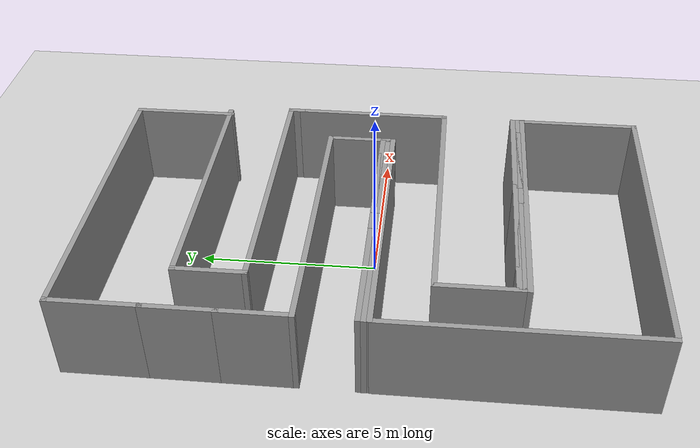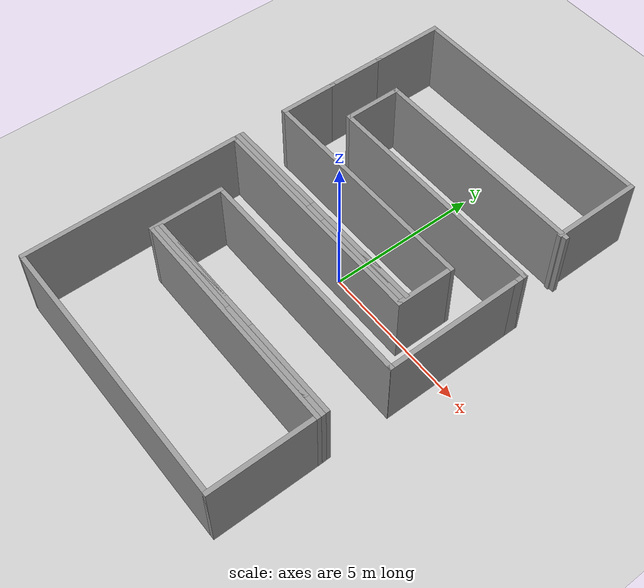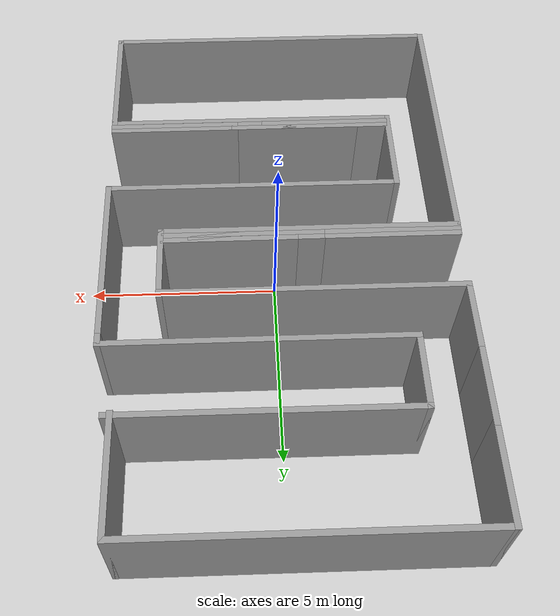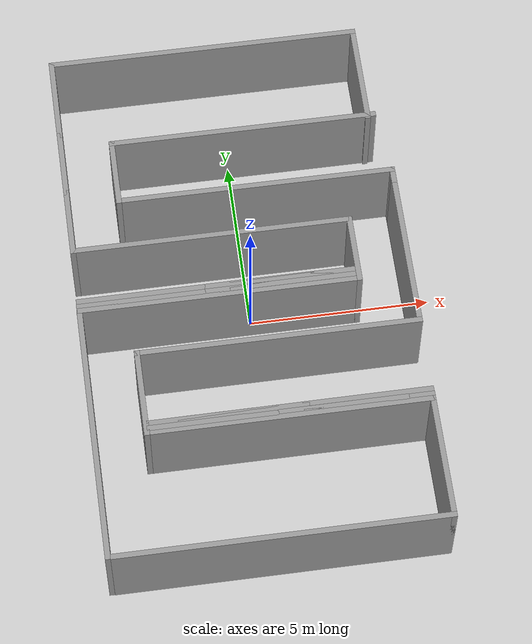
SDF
<sdf version="1.7">
 <world name="default">
  <light name="sun" type="directional">
   <pose>0 0 10 0 -0 0</pose>
   <diffuse>0.8 0.8 0.8 1</diffuse>
   <specular>0.2 0.2 0.2 1</specular>
   <attenuation>
    <range>1000</range>
    <constant>0.9</constant>
    <linear>0.01</linear>
    <quadratic>0.001</quadratic>
   </attenuation>
   <direction>-0.5 0.1 -0.9</direction>
   <spot><inner_angle>0</inner_angle><outer_angle>0</outer_angle><falloff>0</falloff></spot>
  </light>
  <model name="ground_plane">
   <static>1</static>
   <link name="link">
    <collision name="collision">
     <geometry><plane><normal>0 0 1</normal><size>100 100</size></plane></geometry>
     <surface>
      <contact><collide_bitmask>65535</collide_bitmask></contact>
      <friction><ode><mu>100</mu><mu2>50</mu2></ode></friction>
     </surface>
    </collision>
    <visual name="visual">
     <cast_shadows>0</cast_shadows>
     <geometry><plane><normal>0 0 1</normal><size>100 100</size></plane></geometry>
     <material>
      <script><uri>file://media/materials/scripts/gazebo.material</uri><name>Gazebo/Grey</name></script>
     </material>
    </visual>
   </link>
  </model>
  <gravity>0 0 -9.8</gravity>
  <magnetic_field>6e-06 2.3e-05 -4.2e-05</magnetic_field>
  <atmosphere type="adiabatic"/>
  <physics type="ode">
   <max_step_size>0.001</max_step_size>
   <real_time_factor>1</real_time_factor>
   <real_time_update_rate>1000</real_time_update_rate>
  </physics>
  <scene><ambient>0.4 0.4 0.4 1</ambient><background>0.7 0.7 0.7 1</background><shadows>1</shadows></scene>
  <spherical_coordinates>
   <surface_model>EARTH_WGS84</surface_model>
   <latitude_deg>0</latitude_deg>
   <longitude_deg>0</longitude_deg>
   <elevation>0</elevation>
   <heading_deg>0</heading_deg>
  </spherical_coordinates>
  <model name="paper4">
   <pose>-0.16256 0.086289 0 0 -0 0</pose>
   <link name="Wall_0">
    <collision name="Wall_0_Collision">
     <geometry><box><size>9 0.15 2.5</size></box></geometry>
     <pose>0 0 1.25 0 -0 0</pose>
    </collision>
    <visual name="Wall_0_Visual">
     <pose>0 0 1.25 0 -0 0</pose>
     <geometry><box><size>9 0.15 2.5</size></box></geometry>
     <material>
      <script><uri>file://media/materials/scripts/gazebo.material</uri><name>Gazebo/Grey</name></script>
      <ambient>1 1 1 1</ambient>
     </material>
     <meta><layer>0</layer></meta>
    </visual>
    <pose>0.055503 -7.53315 0 0 -0 0</pose>
   </link>
   <link name="Wall_1">
    <collision name="Wall_1_Collision">
     <geometry><box><size>3.5 0.15 2.5</size></box></geometry>
     <pose>0 0 1.25 0 -0 0</pose>
    </collision>
    <visual name="Wall_1_Visual">
     <pose>0 0 1.25 0 -0 0</pose>
     <geometry><box><size>3.5 0.15 2.5</size></box></geometry>
     <material>
      <script><uri>file://media/materials/scripts/gazebo.material</uri><name>Gazebo/Grey</name></script>
      <ambient>1 1 1 1</ambient>
     </material>
     <meta><layer>0</layer></meta>
    </visual>
    <pose>4.4805 -5.85815 0 0 -0 1.5708</pose>
   </link>
   <link name="Wall_17">
    <collision name="Wall_17_Collision">
     <geometry><box><size>2.5 0.15 2.5</size></box></geometry>
     <pose>0 0 1.25 0 -0 0</pose>
    </collision>
    <visual name="Wall_17_Visual">
     <pose>0 0 1.25 0 -0 0</pose>
     <geometry><box><size>2.5 0.15 2.5</size></box></geometry>
     <material>
      <script><uri>file://media/materials/scripts/gazebo.material</uri><name>Gazebo/Grey</name></script>
      <ambient>1 1 1 1</ambient>
     </material>
     <meta><layer>0</layer></meta>
    </visual>
    <pose>-3.1195 -3.00815 0 0 -0 1.5708</pose>
   </link>
   <link name="Wall_18">
    <collision name="Wall_18_Collision">
     <geometry><box><size>7.78042 0.15 2.5</size></box></geometry>
     <pose>0 0 1.25 0 -0 0</pose>
    </collision>
    <visual name="Wall_18_Visual">
     <pose>0 0 1.25 0 -0 0</pose>
     <geometry><box><size>7.78042 0.15 2.5</size></box></geometry>
     <material>
      <script><uri>file://media/materials/scripts/gazebo.material</uri><name>Gazebo/Grey</name></script>
      <ambient>1 1 1 1</ambient>
     </material>
     <meta><layer>0</layer></meta>
    </visual>
    <pose>0.695712 -1.83315 0 0 -0 0</pose>
   </link>
   <link name="Wall_19">
    <collision name="Wall_19_Collision">
     <geometry><box><size>4.5 0.15 2.5</size></box></geometry>
     <pose>0 0 1.25 0 -0 0</pose>
    </collision>
    <visual name="Wall_19_Visual">
     <pose>0 0 1.25 0 -0 0</pose>
     <geometry><box><size>4.5 0.15 2.5</size></box></geometry>
     <material>
      <script><uri>file://media/materials/scripts/gazebo.material</uri><name>Gazebo/Grey</name></script>
      <ambient>1 1 1 1</ambient>
     </material>
     <meta><layer>0</layer></meta>
    </visual>
    <pose>4.51092 0.35706 0 0 -0 1.5708</pose>
   </link>
   <link name="Wall_2">
    <collision name="Wall_2_Collision">
     <geometry><box><size>7.75 0.15 2.5</size></box></geometry>
     <pose>0 0 1.25 0 -0 0</pose>
    </collision>
    <visual name="Wall_2_Visual">
     <pose>0 0 1.25 0 -0 0</pose>
     <geometry><box><size>7.75 0.15 2.5</size></box></geometry>
     <material>
      <script><uri>file://media/materials/scripts/gazebo.material</uri><name>Gazebo/Grey</name></script>
      <ambient>1 1 1 1</ambient>
     </material>
     <meta><layer>0</layer></meta>
    </visual>
    <pose>0.680503 -4.18315 0 0 -0 3.14159</pose>
   </link>
   <link name="Wall_28">
    <collision name="Wall_28_Collision">
     <geometry><box><size>7.75 0.15 2.5</size></box></geometry>
     <pose>0 0 1.25 0 -0 0</pose>
    </collision>
    <visual name="Wall_28_Visual">
     <pose>0 0 1.25 0 -0 0</pose>
     <geometry><box><size>7.75 0.15 2.5</size></box></geometry>
     <material>
      <script><uri>file://media/materials/scripts/gazebo.material</uri><name>Gazebo/Grey</name></script>
      <ambient>1 1 1 1</ambient>
     </material>
     <meta><layer>0</layer></meta>
    </visual>
    <pose>-0.69652 -0.366851 0 0 -0 0</pose>
   </link>
   <link name="Wall_30">
    <collision name="Wall_30_Collision">
     <geometry><box><size>2 0.15 2.5</size></box></geometry>
     <pose>0 0 1.25 0 -0 0</pose>
    </collision>
    <visual name="Wall_30_Visual">
     <pose>0 0 1.25 0 -0 0</pose>
     <geometry><box><size>2 0.15 2.5</size></box></geometry>
     <material>
      <script><uri>file://media/materials/scripts/gazebo.material</uri><name>Gazebo/Grey</name></script>
      <ambient>1 1 1 1</ambient>
     </material>
     <meta><layer>0</layer></meta>
    </visual>
    <pose>3.10348 0.558149 0 0 -0 1.5708</pose>
   </link>
   <link name="Wall_32">
    <collision name="Wall_32_Collision">
     <geometry><box><size>0.5 0.15 2.5</size></box></geometry>
     <pose>0 0 1.25 0 -0 0</pose>
    </collision>
    <visual name="Wall_32_Visual">
     <pose>0 0 1.25 0 -0 0</pose>
     <geometry><box><size>0.5 0.15 2.5</size></box></geometry>
     <material>
      <script><uri>file://media/materials/scripts/gazebo.material</uri><name>Gazebo/Grey</name></script>
      <ambient>1 1 1 1</ambient>
     </material>
     <meta><layer>0</layer></meta>
    </visual>
    <pose>4.51092 2.70706 0 0 -0 1.5708</pose>
   </link>
   <link name="Wall_33">
    <collision name="Wall_33_Collision">
     <geometry><box><size>7.75 0.15 2.5</size></box></geometry>
     <pose>0 0 1.25 0 -0 0</pose>
    </collision>
    <visual name="Wall_33_Visual">
     <pose>0 0 1.25 0 -0 0</pose>
     <geometry><box><size>7.75 0.15 2.5</size></box></geometry>
     <material>
      <script><uri>file://media/materials/scripts/gazebo.material</uri><name>Gazebo/Grey</name></script>
      <ambient>1 1 1 1</ambient>
     </material>
     <meta><layer>0</layer></meta>
    </visual>
    <pose>0.71092 2.88206 0 0 -0 3.14159</pose>
   </link>
   <link name="Wall_34">
    <collision name="Wall_34_Collision">
     <geometry><box><size>2 0.15 2.5</size></box></geometry>
     <pose>0 0 1.25 0 -0 0</pose>
    </collision>
    <visual name="Wall_34_Visual">
     <pose>0 0 1.25 0 -0 0</pose>
     <geometry><box><size>2 0.15 2.5</size></box></geometry>
     <material>
      <script><uri>file://media/materials/scripts/gazebo.material</uri><name>Gazebo/Grey</name></script>
      <ambient>1 1 1 1</ambient>
     </material>
     <meta><layer>0</layer></meta>
    </visual>
    <pose>-3.08908 3.80706 0 0 -0 1.5708</pose>
   </link>
   <link name="Wall_36">
    <collision name="Wall_36_Collision">
     <geometry><box><size>7.75 0.15 2.5</size></box></geometry>
     <pose>0 0 1.25 0 -0 0</pose>
    </collision>
    <visual name="Wall_36_Visual">
     <pose>0 0 1.25 0 -0 0</pose>
     <geometry><box><size>7.75 0.15 2.5</size></box></geometry>
     <material>
      <script><uri>file://media/materials/scripts/gazebo.material</uri><name>Gazebo/Grey</name></script>
      <ambient>1 1 1 1</ambient>
     </material>
     <meta><layer>0</layer></meta>
    </visual>
    <pose>-0.69652 1.48315 0 0 -0 3.14159</pose>
   </link>
   <link name="Wall_37">
    <collision name="Wall_37_Collision">
     <geometry><box><size>2 0.15 2.5</size></box></geometry>
     <pose>0 0 1.25 0 -0 0</pose>
    </collision>
    <visual name="Wall_37_Visual">
     <pose>0 0 1.25 0 -0 0</pose>
     <geometry><box><size>2 0.15 2.5</size></box></geometry>
     <material>
      <script><uri>file://media/materials/scripts/gazebo.material</uri><name>Gazebo/Grey</name></script>
      <ambient>1 1 1 1</ambient>
     </material>
     <meta><layer>0</layer></meta>
    </visual>
    <pose>-4.49652 2.40815 0 0 -0 1.5708</pose>
   </link>
   <link name="Wall_39">
    <collision name="Wall_39_Collision">
     <geometry><box><size>2 0.15 2.5</size></box></geometry>
     <pose>0 0 1.25 0 -0 0</pose>
    </collision>
    <visual name="Wall_39_Visual">
     <pose>0 0 1.25 0 -0 0</pose>
     <geometry><box><size>2 0.15 2.5</size></box></geometry>
     <material>
      <script><uri>file://media/materials/scripts/gazebo.material</uri><name>Gazebo/Grey</name></script>
      <ambient>1 1 1 1</ambient>
     </material>
     <meta><layer>0</layer></meta>
    </visual>
    <pose>-4.49652 4.25815 0 0 -0 1.5708</pose>
   </link>
   <link name="Wall_43">
    <collision name="Wall_43_Collision">
     <geometry><box><size>7.50389 0.15 2.5</size></box></geometry>
     <pose>0 0 1.25 0 -0 0</pose>
    </collision>
    <visual name="Wall_43_Visual">
     <pose>0 0 1.25 0 -0 0</pose>
     <geometry><box><size>7.50389 0.15 2.5</size></box></geometry>
     <material>
      <script><uri>file://media/materials/scripts/gazebo.material</uri><name>Gazebo/Grey</name></script>
      <ambient>1 1 1 1</ambient>
     </material>
     <meta><layer>0</layer></meta>
    </visual>
    <pose>0.587865 4.73206 0 0 -0 0</pose>
   </link>
   <link name="Wall_67">
    <collision name="Wall_67_Collision">
     <geometry><box><size>2.5 0.15 2.5</size></box></geometry>
     <pose>0 0 1.25 0 -0 0</pose>
    </collision>
    <visual name="Wall_67_Visual">
     <pose>0 0 1.25 0 -0 0</pose>
     <geometry><box><size>2.5 0.15 2.5</size></box></geometry>
     <material>
      <script><uri>file://media/materials/scripts/gazebo.material</uri><name>Gazebo/Grey</name></script>
      <ambient>1 1 1 1</ambient>
     </material>
     <meta><layer>0</layer></meta>
    </visual>
    <pose>-4.49652 6.35815 0 0 -0 1.5708</pose>
   </link>
   <link name="Wall_68">
    <collision name="Wall_68_Collision">
     <geometry><box><size>8.75389 0.15 2.5</size></box></geometry>
     <pose>0 0 1.25 0 -0 0</pose>
    </collision>
    <visual name="Wall_68_Visual">
     <pose>0 0 1.25 0 -0 0</pose>
     <geometry><box><size>8.75389 0.15 2.5</size></box></geometry>
     <material>
      <script><uri>file://media/materials/scripts/gazebo.material</uri><name>Gazebo/Grey</name></script>
      <ambient>1 1 1 1</ambient>
     </material>
     <meta><layer>0</layer></meta>
    </visual>
    <pose>-0.194576 7.53315 0 0 -0 0</pose>
   </link>
   <link name="Wall_7">
    <collision name="Wall_7_Collision">
     <geometry><box><size>7.25 0.15 2.5</size></box></geometry>
     <pose>0 0 1.25 0 -0 0</pose>
    </collision>
    <visual name="Wall_7_Visual">
     <pose>0 0 1.25 0 -0 0</pose>
     <geometry><box><size>7.25 0.15 2.5</size></box></geometry>
     <material>
      <script><uri>file://media/materials/scripts/gazebo.material</uri><name>Gazebo/Grey</name></script>
      <ambient>1 1 1 1</ambient>
     </material>
     <meta><layer>0</layer></meta>
    </visual>
    <pose>-4.51092 -3.97253 0 0 -0 -1.5708</pose>
   </link>
   <link name="Wall_73">
    <collision name="Wall_73_Collision">
     <geometry><box><size>3 0.15 2.5</size></box></geometry>
     <pose>0 0 1.25 0 -0 0</pose>
    </collision>
    <visual name="Wall_73_Visual">
     <pose>0 0 1.25 0 -0 0</pose>
     <geometry><box><size>3 0.15 2.5</size></box></geometry>
     <material>
      <script><uri>file://media/materials/scripts/gazebo.material</uri><name>Gazebo/Grey</name></script>
      <ambient>1 1 1 1</ambient>
     </material>
     <meta><layer>0</layer></meta>
    </visual>
    <pose>4.10737 6.10815 0 0 -0 -1.5708</pose>
   </link>
   <static>1</static>
  </model>
  <model name="pap5-2">
   <pose>-2.10802 -3.41503 0 0 -0 1.57263</pose>
   <link name="Wall_0">
    <collision name="Wall_0_Collision">
     <geometry><box><size>3.5 0.15 2.5</size></box></geometry>
     <pose>0 0 1.25 0 -0 0</pose>
    </collision>
    <visual name="Wall_0_Visual">
     <pose>0 0 1.25 0 -0 0</pose>
     <geometry><box><size>3.5 0.15 2.5</size></box></geometry>
     <material>
      <script><uri>file://media/materials/scripts/gazebo.material</uri><name>Gazebo/Grey</name></script>
      <ambient>1 1 1 1</ambient>
     </material>
     <meta><layer>0</layer></meta>
    </visual>
    <pose>-0.5575 -0.5875 0 0 -0 -1.5708</pose>
   </link>
   <static>1</static>
  </model>
  <model name="pap5-2_clone">
   <pose>1.3667 -3.4085 0 0 -0 1.57263</pose>
   <link name="Wall_0">
    <collision name="Wall_0_Collision">
     <geometry><box><size>3.5 0.15 2.5</size></box></geometry>
     <pose>0 0 1.25 0 -0 0</pose>
    </collision>
    <visual name="Wall_0_Visual">
     <pose>0 0 1.25 0 -0 0</pose>
     <geometry><box><size>3.5 0.15 2.5</size></box></geometry>
     <material>
      <script><uri>file://media/materials/scripts/gazebo.material</uri><name>Gazebo/Grey</name></script>
      <ambient>1 1 1 1</ambient>
     </material>
     <meta><layer>0</layer></meta>
    </visual>
    <pose>-0.5575 -0.5875 0 0 -0 -1.5708</pose>
   </link>
   <static>1</static>
  </model>
  <model name="pap5-2_clone_0">
   <pose>2.05482 -3.40564 0 0 -0 1.57263</pose>
   <link name="Wall_0">
    <collision name="Wall_0_Collision">
     <geometry><box><size>3.5 0.15 2.5</size></box></geometry>
     <pose>0 0 1.25 0 -0 0</pose>
    </collision>
    <visual name="Wall_0_Visual">
     <pose>0 0 1.25 0 -0 0</pose>
     <geometry><box><size>3.5 0.15 2.5</size></box></geometry>
     <material>
      <script><uri>file://media/materials/scripts/gazebo.material</uri><name>Gazebo/Grey</name></script>
      <ambient>1 1 1 1</ambient>
     </material>
     <meta><layer>0</layer></meta>
    </visual>
    <pose>-0.5575 -0.5875 0 0 -0 -1.5708</pose>
   </link>
   <static>1</static>
  </model>
  <model name="pap5-2_clone_1">
   <pose>2.04841 -3.26497 0 0 -0 1.57263</pose>
   <link name="Wall_0">
    <collision name="Wall_0_Collision">
     <geometry><box><size>3.5 0.15 2.5</size></box></geometry>
     <pose>0 0 1.25 0 -0 0</pose>
    </collision>
    <visual name="Wall_0_Visual">
     <pose>0 0 1.25 0 -0 0</pose>
     <geometry><box><size>3.5 0.15 2.5</size></box></geometry>
     <material>
      <script><uri>file://media/materials/scripts/gazebo.material</uri><name>Gazebo/Grey</name></script>
      <ambient>1 1 1 1</ambient>
     </material>
     <meta><layer>0</layer></meta>
    </visual>
    <pose>-0.5575 -0.5875 0 0 -0 -1.5708</pose>
   </link>
   <static>1</static>
  </model>
  <model name="pap5-2_clone_2">
   <pose>-1.27397 -3.27264 0 0 -0 1.57263</pose>
   <link name="Wall_0">
    <collision name="Wall_0_Collision">
     <geometry><box><size>3.5 0.15 2.5</size></box></geometry>
     <pose>0 0 1.25 0 -0 0</pose>
    </collision>
    <visual name="Wall_0_Visual">
     <pose>0 0 1.25 0 -0 0</pose>
     <geometry><box><size>3.5 0.15 2.5</size></box></geometry>
     <material>
      <script><uri>file://media/materials/scripts/gazebo.material</uri><name>Gazebo/Grey</name></script>
      <ambient>1 1 1 1</ambient>
     </material>
     <meta><layer>0</layer></meta>
    </visual>
    <pose>-0.5575 -0.5875 0 0 -0 -1.5708</pose>
   </link>
   <static>1</static>
  </model>
  <model name="pap5-2_clone_3">
   <pose>-2.09491 -3.27482 0 0 -0 1.57263</pose>
   <link name="Wall_0">
    <collision name="Wall_0_Collision">
     <geometry><box><size>3.5 0.15 2.5</size></box></geometry>
     <pose>0 0 1.25 0 -0 0</pose>
    </collision>
    <visual name="Wall_0_Visual">
     <pose>0 0 1.25 0 -0 0</pose>
     <geometry><box><size>3.5 0.15 2.5</size></box></geometry>
     <material>
      <script><uri>file://media/materials/scripts/gazebo.material</uri><name>Gazebo/Grey</name></script>
      <ambient>1 1 1 1</ambient>
     </material>
     <meta><layer>0</layer></meta>
    </visual>
    <pose>-0.5575 -0.5875 0 0 -0 -1.5708</pose>
   </link>
   <static>1</static>
  </model>
  <model name="pap5-2_clone_4">
   <pose>-3.57971 0.414899 0 0 -0 1.57263</pose>
   <link name="Wall_0">
    <collision name="Wall_0_Collision">
     <geometry><box><size>3.5 0.15 2.5</size></box></geometry>
     <pose>0 0 1.25 0 -0 0</pose>
    </collision>
    <visual name="Wall_0_Visual">
     <pose>0 0 1.25 0 -0 0</pose>
     <geometry><box><size>3.5 0.15 2.5</size></box></geometry>
     <material>
      <script><uri>file://media/materials/scripts/gazebo.material</uri><name>Gazebo/Grey</name></script>
      <ambient>1 1 1 1</ambient>
     </material>
     <meta><layer>0</layer></meta>
    </visual>
    <pose>-0.5575 -0.5875 0 0 -0 -1.5708</pose>
   </link>
   <static>1</static>
  </model>
  <model name="pap5-2_clone_5">
   <pose>-3.57141 0.555716 0 0 -0 1.57263</pose>
   <link name="Wall_0">
    <collision name="Wall_0_Collision">
     <geometry><box><size>3.5 0.15 2.5</size></box></geometry>
     <pose>0 0 1.25 0 -0 0</pose>
    </collision>
    <visual name="Wall_0_Visual">
     <pose>0 0 1.25 0 -0 0</pose>
     <geometry><box><size>3.5 0.15 2.5</size></box></geometry>
     <material>
      <script><uri>file://media/materials/scripts/gazebo.material</uri><name>Gazebo/Grey</name></script>
      <ambient>1 1 1 1</ambient>
     </material>
     <meta><layer>0</layer></meta>
    </visual>
    <pose>-0.5575 -0.5875 0 0 -0 -1.5708</pose>
   </link>
   <static>1</static>
  </model>
  <model name="pap5-2_clone_6">
   <pose>-0.088462 0.41579 0 0 -0 1.57263</pose>
   <link name="Wall_0">
    <collision name="Wall_0_Collision">
     <geometry><box><size>3.5 0.15 2.5</size></box></geometry>
     <pose>0 0 1.25 0 -0 0</pose>
    </collision>
    <visual name="Wall_0_Visual">
     <pose>0 0 1.25 0 -0 0</pose>
     <geometry><box><size>3.5 0.15 2.5</size></box></geometry>
     <material>
      <script><uri>file://media/materials/scripts/gazebo.material</uri><name>Gazebo/Grey</name></script>
      <ambient>1 1 1 1</ambient>
     </material>
     <meta><layer>0</layer></meta>
    </visual>
    <pose>-0.5575 -0.5875 0 0 -0 -1.5708</pose>
   </link>
   <static>1</static>
  </model>
  <model name="pap5-2_clone_7">
   <pose>-0.087511 0.564089 0 0 -0 1.57263</pose>
   <link name="Wall_0">
    <collision name="Wall_0_Collision">
     <geometry><box><size>3.5 0.15 2.5</size></box></geometry>
     <pose>0 0 1.25 0 -0 0</pose>
    </collision>
    <visual name="Wall_0_Visual">
     <pose>0 0 1.25 0 -0 0</pose>
     <geometry><box><size>3.5 0.15 2.5</size></box></geometry>
     <material>
      <script><uri>file://media/materials/scripts/gazebo.material</uri><name>Gazebo/Grey</name></script>
      <ambient>1 1 1 1</ambient>
     </material>
     <meta><layer>0</layer></meta>
    </visual>
    <pose>-0.5575 -0.5875 0 0 -0 -1.5708</pose>
   </link>
   <static>1</static>
  </model>
  <model name="pap5-2_clone_8">
   <pose>0.586026 0.418524 0 0 -0 1.57263</pose>
   <link name="Wall_0">
    <collision name="Wall_0_Collision">
     <geometry><box><size>3.5 0.15 2.5</size></box></geometry>
     <pose>0 0 1.25 0 -0 0</pose>
    </collision>
    <visual name="Wall_0_Visual">
     <pose>0 0 1.25 0 -0 0</pose>
     <geometry><box><size>3.5 0.15 2.5</size></box></geometry>
     <material>
      <script><uri>file://media/materials/scripts/gazebo.material</uri><name>Gazebo/Grey</name></script>
      <ambient>1 1 1 1</ambient>
     </material>
     <meta><layer>0</layer></meta>
    </visual>
    <pose>-0.5575 -0.5875 0 0 -0 -1.5708</pose>
   </link>
   <static>1</static>
  </model>
  <model name="pap5-2_clone_9">
   <pose>0.601718 0.567542 0 0 -0 1.57263</pose>
   <link name="Wall_0">
    <collision name="Wall_0_Collision">
     <geometry><box><size>3.5 0.15 2.5</size></box></geometry>
     <pose>0 0 1.25 0 -0 0</pose>
    </collision>
    <visual name="Wall_0_Visual">
     <pose>0 0 1.25 0 -0 0</pose>
     <geometry><box><size>3.5 0.15 2.5</size></box></geometry>
     <material>
      <script><uri>file://media/materials/scripts/gazebo.material</uri><name>Gazebo/Grey</name></script>
      <ambient>1 1 1 1</ambient>
     </material>
     <meta><layer>0</layer></meta>
    </visual>
    <pose>-0.5575 -0.5875 0 0 -0 -1.5708</pose>
   </link>
   <static>1</static>
  </model>
 </world>
</sdf>
